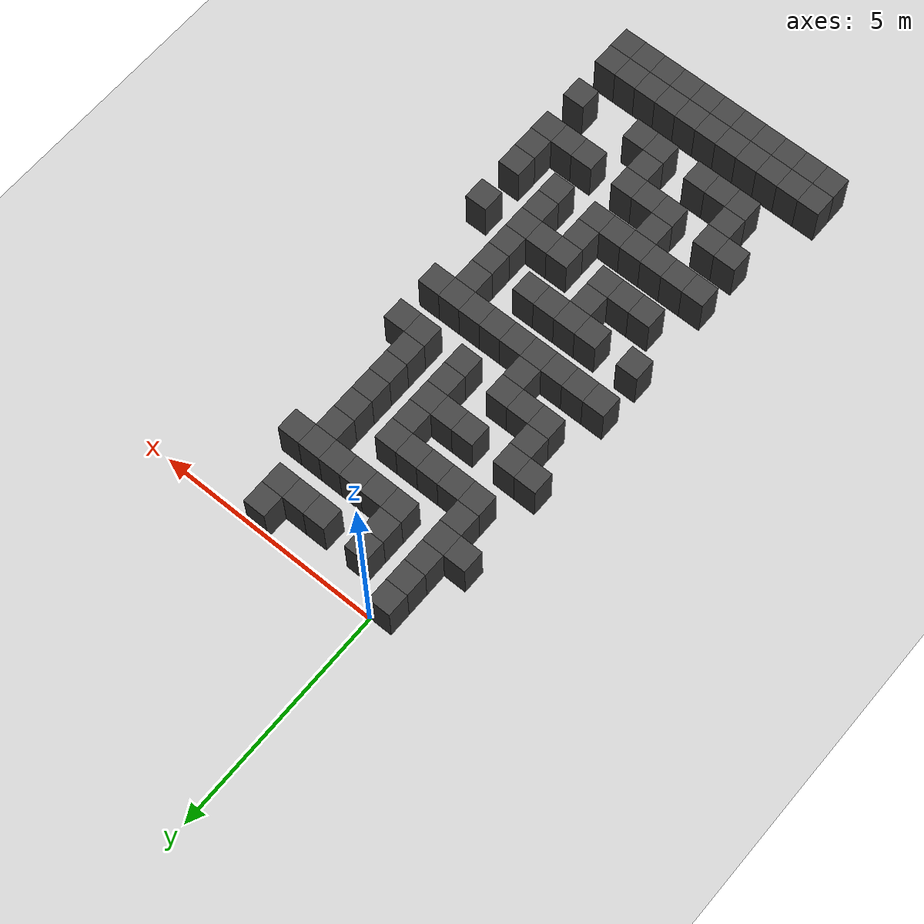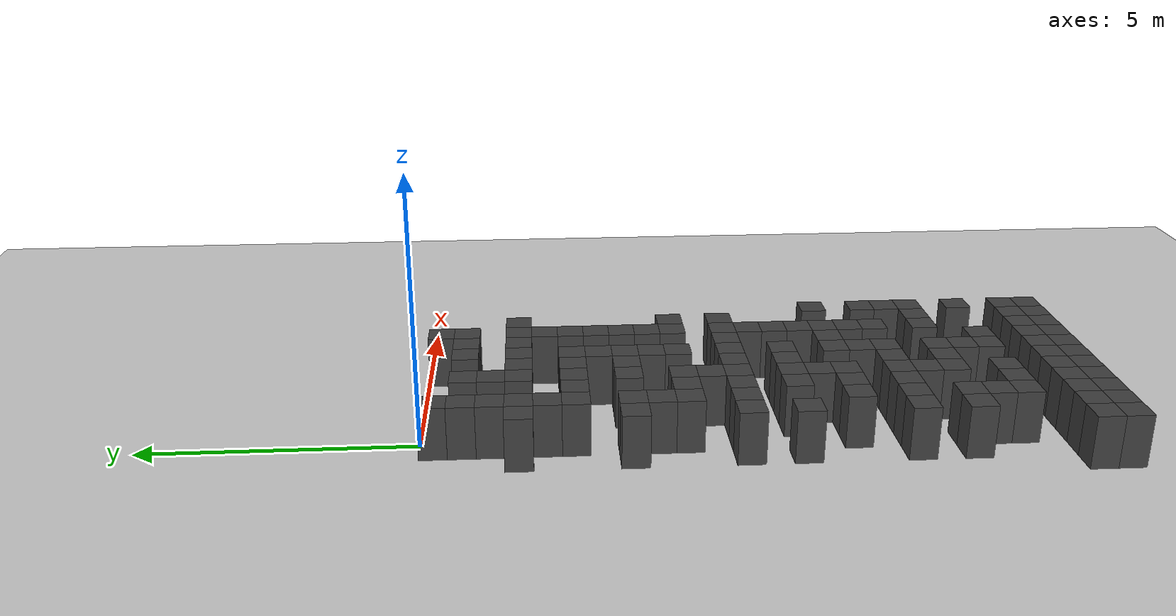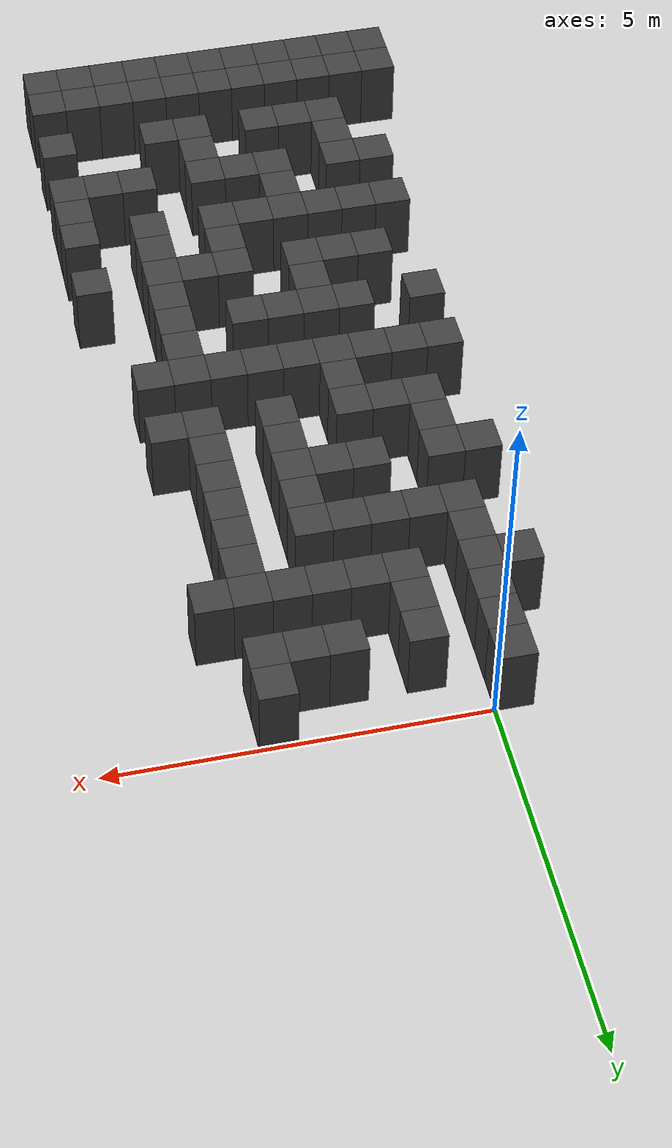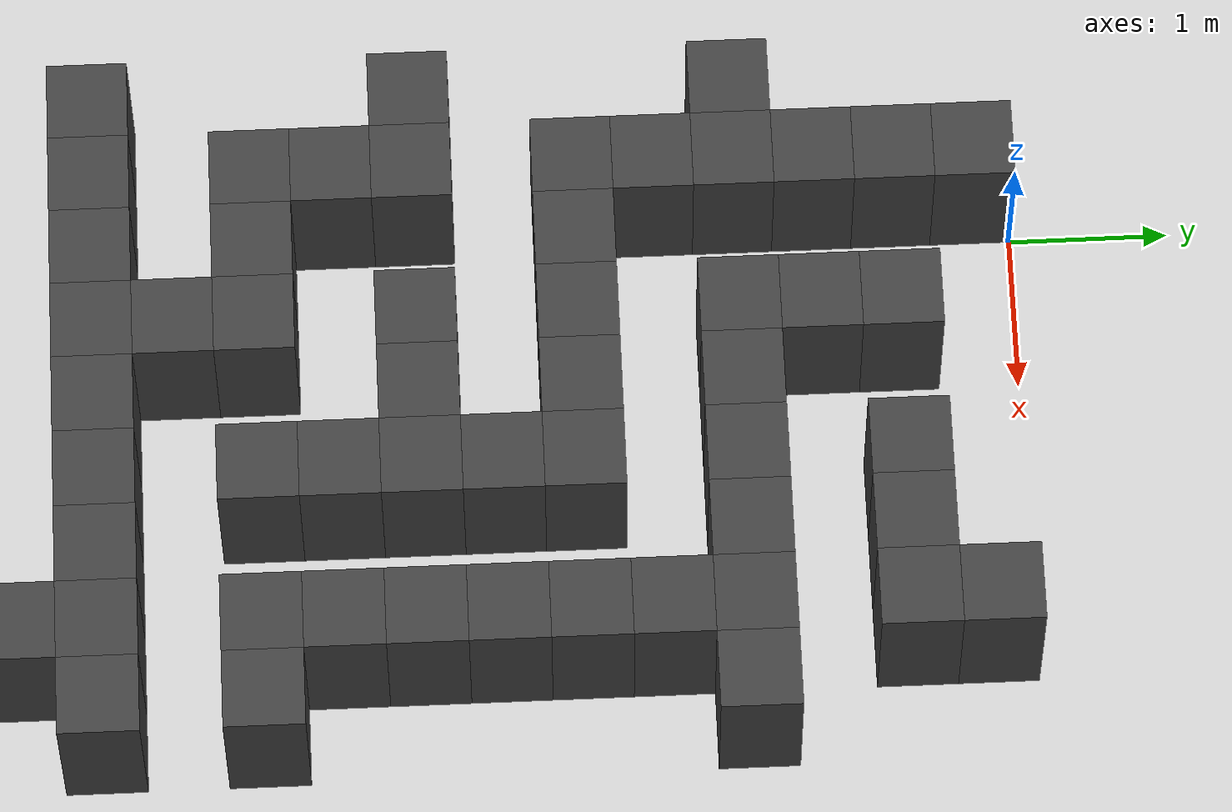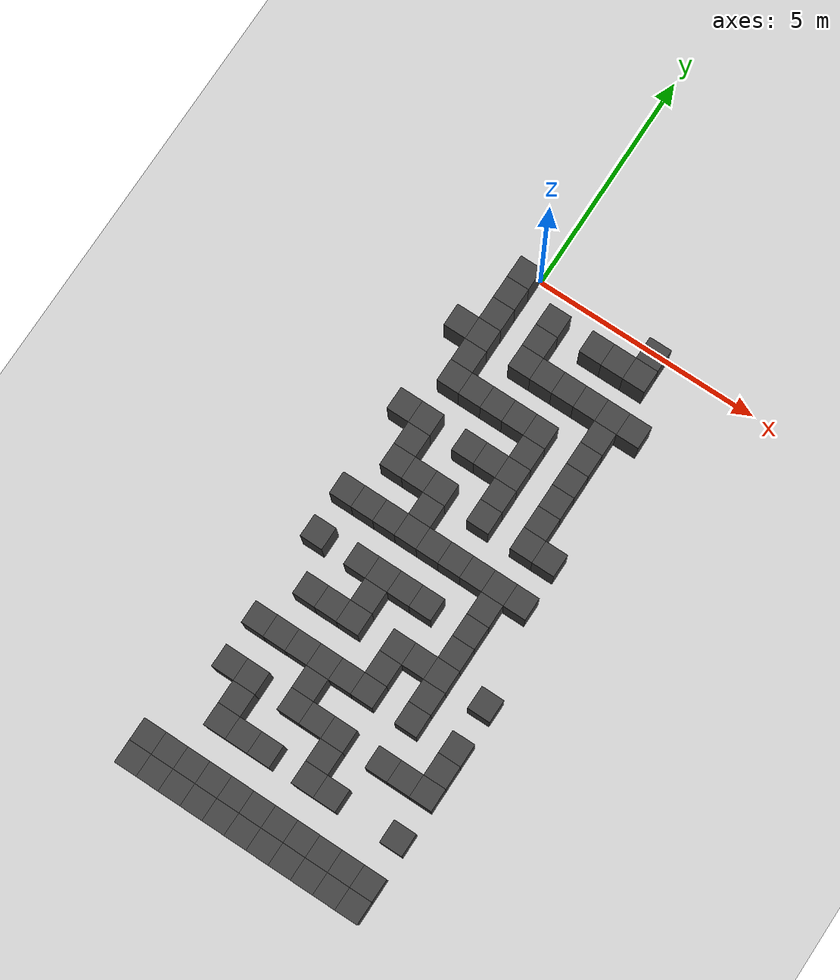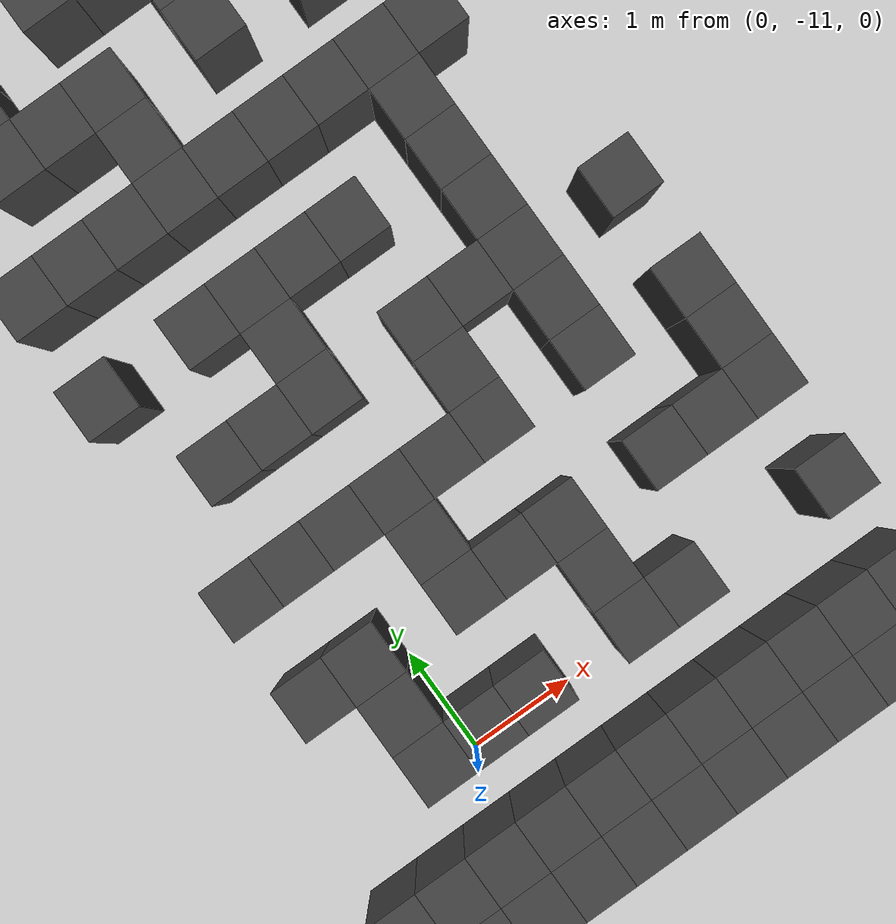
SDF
<sdf version="1.7">
 <world name="map_18332">
  <model name="ground_plane">
   <static>true</static>
   <link name="link">
    <collision name="collision">
     <geometry><plane><normal>0 0 1</normal><size>200 200</size></plane></geometry>
    </collision>
    <visual name="visual">
     <geometry><plane><normal>0 0 1</normal><size>200 200</size></plane></geometry>
     <material><ambient>0.8 0.8 0.8 1</ambient><diffuse>0.8 0.8 0.8 1</diffuse></material>
    </visual>
   </link>
  </model>
  <model name="maze_environment">
   <static>true</static>
   <link name="wall_649">
    <pose>-0.250 -0.250 0.500 0 0 0</pose>
    <collision name="col"><geometry><box><size>0.5 0.5 1.0</size></box></geometry></collision>
    <visual name="vis">
     <geometry><box><size>0.5 0.5 1.0</size></box></geometry>
     <material><ambient>0.15 0.15 0.15 1</ambient><diffuse>0.25 0.25 0.25 1</diffuse></material>
    </visual>
   </link>
   <link name="wall_650">
    <pose>2.750 -0.250 0.500 0 0 0</pose>
    <collision name="col"><geometry><box><size>0.5 0.5 1.0</size></box></geometry></collision>
    <visual name="vis">
     <geometry><box><size>0.5 0.5 1.0</size></box></geometry>
     <material><ambient>0.15 0.15 0.15 1</ambient><diffuse>0.25 0.25 0.25 1</diffuse></material>
    </visual>
   </link>
   <link name="wall_673">
    <pose>-0.250 -0.750 0.500 0 0 0</pose>
    <collision name="col"><geometry><box><size>0.5 0.5 1.0</size></box></geometry></collision>
    <visual name="vis">
     <geometry><box><size>0.5 0.5 1.0</size></box></geometry>
     <material><ambient>0.15 0.15 0.15 1</ambient><diffuse>0.25 0.25 0.25 1</diffuse></material>
    </visual>
   </link>
   <link name="wall_674">
    <pose>0.750 -0.750 0.500 0 0 0</pose>
    <collision name="col"><geometry><box><size>0.5 0.5 1.0</size></box></geometry></collision>
    <visual name="vis">
     <geometry><box><size>0.5 0.5 1.0</size></box></geometry>
     <material><ambient>0.15 0.15 0.15 1</ambient><diffuse>0.25 0.25 0.25 1</diffuse></material>
    </visual>
   </link>
   <link name="wall_675">
    <pose>1.750 -0.750 0.500 0 0 0</pose>
    <collision name="col"><geometry><box><size>0.5 0.5 1.0</size></box></geometry></collision>
    <visual name="vis">
     <geometry><box><size>0.5 0.5 1.0</size></box></geometry>
     <material><ambient>0.15 0.15 0.15 1</ambient><diffuse>0.25 0.25 0.25 1</diffuse></material>
    </visual>
   </link>
   <link name="wall_676">
    <pose>2.250 -0.750 0.500 0 0 0</pose>
    <collision name="col"><geometry><box><size>0.5 0.5 1.0</size></box></geometry></collision>
    <visual name="vis">
     <geometry><box><size>0.5 0.5 1.0</size></box></geometry>
     <material><ambient>0.15 0.15 0.15 1</ambient><diffuse>0.25 0.25 0.25 1</diffuse></material>
    </visual>
   </link>
   <link name="wall_677">
    <pose>2.750 -0.750 0.500 0 0 0</pose>
    <collision name="col"><geometry><box><size>0.5 0.5 1.0</size></box></geometry></collision>
    <visual name="vis">
     <geometry><box><size>0.5 0.5 1.0</size></box></geometry>
     <material><ambient>0.15 0.15 0.15 1</ambient><diffuse>0.25 0.25 0.25 1</diffuse></material>
    </visual>
   </link>
   <link name="wall_697">
    <pose>-0.250 -1.250 0.500 0 0 0</pose>
    <collision name="col"><geometry><box><size>0.5 0.5 1.0</size></box></geometry></collision>
    <visual name="vis">
     <geometry><box><size>0.5 0.5 1.0</size></box></geometry>
     <material><ambient>0.15 0.15 0.15 1</ambient><diffuse>0.25 0.25 0.25 1</diffuse></material>
    </visual>
   </link>
   <link name="wall_698">
    <pose>0.750 -1.250 0.500 0 0 0</pose>
    <collision name="col"><geometry><box><size>0.5 0.5 1.0</size></box></geometry></collision>
    <visual name="vis">
     <geometry><box><size>0.5 0.5 1.0</size></box></geometry>
     <material><ambient>0.15 0.15 0.15 1</ambient><diffuse>0.25 0.25 0.25 1</diffuse></material>
    </visual>
   </link>
   <link name="wall_725">
    <pose>-0.750 -1.750 0.500 0 0 0</pose>
    <collision name="col"><geometry><box><size>0.5 0.5 1.0</size></box></geometry></collision>
    <visual name="vis">
     <geometry><box><size>0.5 0.5 1.0</size></box></geometry>
     <material><ambient>0.15 0.15 0.15 1</ambient><diffuse>0.25 0.25 0.25 1</diffuse></material>
    </visual>
   </link>
   <link name="wall_726">
    <pose>-0.250 -1.750 0.500 0 0 0</pose>
    <collision name="col"><geometry><box><size>0.5 0.5 1.0</size></box></geometry></collision>
    <visual name="vis">
     <geometry><box><size>0.5 0.5 1.0</size></box></geometry>
     <material><ambient>0.15 0.15 0.15 1</ambient><diffuse>0.25 0.25 0.25 1</diffuse></material>
    </visual>
   </link>
   <link name="wall_727">
    <pose>0.750 -1.750 0.500 0 0 0</pose>
    <collision name="col"><geometry><box><size>0.5 0.5 1.0</size></box></geometry></collision>
    <visual name="vis">
     <geometry><box><size>0.5 0.5 1.0</size></box></geometry>
     <material><ambient>0.15 0.15 0.15 1</ambient><diffuse>0.25 0.25 0.25 1</diffuse></material>
    </visual>
   </link>
   <link name="wall_728">
    <pose>1.250 -1.750 0.500 0 0 0</pose>
    <collision name="col"><geometry><box><size>0.5 0.5 1.0</size></box></geometry></collision>
    <visual name="vis">
     <geometry><box><size>0.5 0.5 1.0</size></box></geometry>
     <material><ambient>0.15 0.15 0.15 1</ambient><diffuse>0.25 0.25 0.25 1</diffuse></material>
    </visual>
   </link>
   <link name="wall_729">
    <pose>1.750 -1.750 0.500 0 0 0</pose>
    <collision name="col"><geometry><box><size>0.5 0.5 1.0</size></box></geometry></collision>
    <visual name="vis">
     <geometry><box><size>0.5 0.5 1.0</size></box></geometry>
     <material><ambient>0.15 0.15 0.15 1</ambient><diffuse>0.25 0.25 0.25 1</diffuse></material>
    </visual>
   </link>
   <link name="wall_730">
    <pose>2.250 -1.750 0.500 0 0 0</pose>
    <collision name="col"><geometry><box><size>0.5 0.5 1.0</size></box></geometry></collision>
    <visual name="vis">
     <geometry><box><size>0.5 0.5 1.0</size></box></geometry>
     <material><ambient>0.15 0.15 0.15 1</ambient><diffuse>0.25 0.25 0.25 1</diffuse></material>
    </visual>
   </link>
   <link name="wall_731">
    <pose>2.750 -1.750 0.500 0 0 0</pose>
    <collision name="col"><geometry><box><size>0.5 0.5 1.0</size></box></geometry></collision>
    <visual name="vis">
     <geometry><box><size>0.5 0.5 1.0</size></box></geometry>
     <material><ambient>0.15 0.15 0.15 1</ambient><diffuse>0.25 0.25 0.25 1</diffuse></material>
    </visual>
   </link>
   <link name="wall_732">
    <pose>3.250 -1.750 0.500 0 0 0</pose>
    <collision name="col"><geometry><box><size>0.5 0.5 1.0</size></box></geometry></collision>
    <visual name="vis">
     <geometry><box><size>0.5 0.5 1.0</size></box></geometry>
     <material><ambient>0.15 0.15 0.15 1</ambient><diffuse>0.25 0.25 0.25 1</diffuse></material>
    </visual>
   </link>
   <link name="wall_749">
    <pose>-0.250 -2.250 0.500 0 0 0</pose>
    <collision name="col"><geometry><box><size>0.5 0.5 1.0</size></box></geometry></collision>
    <visual name="vis">
     <geometry><box><size>0.5 0.5 1.0</size></box></geometry>
     <material><ambient>0.15 0.15 0.15 1</ambient><diffuse>0.25 0.25 0.25 1</diffuse></material>
    </visual>
   </link>
   <link name="wall_750">
    <pose>2.750 -2.250 0.500 0 0 0</pose>
    <collision name="col"><geometry><box><size>0.5 0.5 1.0</size></box></geometry></collision>
    <visual name="vis">
     <geometry><box><size>0.5 0.5 1.0</size></box></geometry>
     <material><ambient>0.15 0.15 0.15 1</ambient><diffuse>0.25 0.25 0.25 1</diffuse></material>
    </visual>
   </link>
   <link name="wall_772">
    <pose>-0.250 -2.750 0.500 0 0 0</pose>
    <collision name="col"><geometry><box><size>0.5 0.5 1.0</size></box></geometry></collision>
    <visual name="vis">
     <geometry><box><size>0.5 0.5 1.0</size></box></geometry>
     <material><ambient>0.15 0.15 0.15 1</ambient><diffuse>0.25 0.25 0.25 1</diffuse></material>
    </visual>
   </link>
   <link name="wall_773">
    <pose>0.250 -2.750 0.500 0 0 0</pose>
    <collision name="col"><geometry><box><size>0.5 0.5 1.0</size></box></geometry></collision>
    <visual name="vis">
     <geometry><box><size>0.5 0.5 1.0</size></box></geometry>
     <material><ambient>0.15 0.15 0.15 1</ambient><diffuse>0.25 0.25 0.25 1</diffuse></material>
    </visual>
   </link>
   <link name="wall_774">
    <pose>0.750 -2.750 0.500 0 0 0</pose>
    <collision name="col"><geometry><box><size>0.5 0.5 1.0</size></box></geometry></collision>
    <visual name="vis">
     <geometry><box><size>0.5 0.5 1.0</size></box></geometry>
     <material><ambient>0.15 0.15 0.15 1</ambient><diffuse>0.25 0.25 0.25 1</diffuse></material>
    </visual>
   </link>
   <link name="wall_775">
    <pose>1.250 -2.750 0.500 0 0 0</pose>
    <collision name="col"><geometry><box><size>0.5 0.5 1.0</size></box></geometry></collision>
    <visual name="vis">
     <geometry><box><size>0.5 0.5 1.0</size></box></geometry>
     <material><ambient>0.15 0.15 0.15 1</ambient><diffuse>0.25 0.25 0.25 1</diffuse></material>
    </visual>
   </link>
   <link name="wall_776">
    <pose>1.750 -2.750 0.500 0 0 0</pose>
    <collision name="col"><geometry><box><size>0.5 0.5 1.0</size></box></geometry></collision>
    <visual name="vis">
     <geometry><box><size>0.5 0.5 1.0</size></box></geometry>
     <material><ambient>0.15 0.15 0.15 1</ambient><diffuse>0.25 0.25 0.25 1</diffuse></material>
    </visual>
   </link>
   <link name="wall_777">
    <pose>2.750 -2.750 0.500 0 0 0</pose>
    <collision name="col"><geometry><box><size>0.5 0.5 1.0</size></box></geometry></collision>
    <visual name="vis">
     <geometry><box><size>0.5 0.5 1.0</size></box></geometry>
     <material><ambient>0.15 0.15 0.15 1</ambient><diffuse>0.25 0.25 0.25 1</diffuse></material>
    </visual>
   </link>
   <link name="wall_800">
    <pose>1.750 -3.250 0.500 0 0 0</pose>
    <collision name="col"><geometry><box><size>0.5 0.5 1.0</size></box></geometry></collision>
    <visual name="vis">
     <geometry><box><size>0.5 0.5 1.0</size></box></geometry>
     <material><ambient>0.15 0.15 0.15 1</ambient><diffuse>0.25 0.25 0.25 1</diffuse></material>
    </visual>
   </link>
   <link name="wall_801">
    <pose>2.750 -3.250 0.500 0 0 0</pose>
    <collision name="col"><geometry><box><size>0.5 0.5 1.0</size></box></geometry></collision>
    <visual name="vis">
     <geometry><box><size>0.5 0.5 1.0</size></box></geometry>
     <material><ambient>0.15 0.15 0.15 1</ambient><diffuse>0.25 0.25 0.25 1</diffuse></material>
    </visual>
   </link>
   <link name="wall_822">
    <pose>-0.750 -3.750 0.500 0 0 0</pose>
    <collision name="col"><geometry><box><size>0.5 0.5 1.0</size></box></geometry></collision>
    <visual name="vis">
     <geometry><box><size>0.5 0.5 1.0</size></box></geometry>
     <material><ambient>0.15 0.15 0.15 1</ambient><diffuse>0.25 0.25 0.25 1</diffuse></material>
    </visual>
   </link>
   <link name="wall_823">
    <pose>-0.250 -3.750 0.500 0 0 0</pose>
    <collision name="col"><geometry><box><size>0.5 0.5 1.0</size></box></geometry></collision>
    <visual name="vis">
     <geometry><box><size>0.5 0.5 1.0</size></box></geometry>
     <material><ambient>0.15 0.15 0.15 1</ambient><diffuse>0.25 0.25 0.25 1</diffuse></material>
    </visual>
   </link>
   <link name="wall_824">
    <pose>0.750 -3.750 0.500 0 0 0</pose>
    <collision name="col"><geometry><box><size>0.5 0.5 1.0</size></box></geometry></collision>
    <visual name="vis">
     <geometry><box><size>0.5 0.5 1.0</size></box></geometry>
     <material><ambient>0.15 0.15 0.15 1</ambient><diffuse>0.25 0.25 0.25 1</diffuse></material>
    </visual>
   </link>
   <link name="wall_825">
    <pose>1.250 -3.750 0.500 0 0 0</pose>
    <collision name="col"><geometry><box><size>0.5 0.5 1.0</size></box></geometry></collision>
    <visual name="vis">
     <geometry><box><size>0.5 0.5 1.0</size></box></geometry>
     <material><ambient>0.15 0.15 0.15 1</ambient><diffuse>0.25 0.25 0.25 1</diffuse></material>
    </visual>
   </link>
   <link name="wall_826">
    <pose>1.750 -3.750 0.500 0 0 0</pose>
    <collision name="col"><geometry><box><size>0.5 0.5 1.0</size></box></geometry></collision>
    <visual name="vis">
     <geometry><box><size>0.5 0.5 1.0</size></box></geometry>
     <material><ambient>0.15 0.15 0.15 1</ambient><diffuse>0.25 0.25 0.25 1</diffuse></material>
    </visual>
   </link>
   <link name="wall_827">
    <pose>2.750 -3.750 0.500 0 0 0</pose>
    <collision name="col"><geometry><box><size>0.5 0.5 1.0</size></box></geometry></collision>
    <visual name="vis">
     <geometry><box><size>0.5 0.5 1.0</size></box></geometry>
     <material><ambient>0.15 0.15 0.15 1</ambient><diffuse>0.25 0.25 0.25 1</diffuse></material>
    </visual>
   </link>
   <link name="wall_847">
    <pose>-0.250 -4.250 0.500 0 0 0</pose>
    <collision name="col"><geometry><box><size>0.5 0.5 1.0</size></box></geometry></collision>
    <visual name="vis">
     <geometry><box><size>0.5 0.5 1.0</size></box></geometry>
     <material><ambient>0.15 0.15 0.15 1</ambient><diffuse>0.25 0.25 0.25 1</diffuse></material>
    </visual>
   </link>
   <link name="wall_848">
    <pose>1.750 -4.250 0.500 0 0 0</pose>
    <collision name="col"><geometry><box><size>0.5 0.5 1.0</size></box></geometry></collision>
    <visual name="vis">
     <geometry><box><size>0.5 0.5 1.0</size></box></geometry>
     <material><ambient>0.15 0.15 0.15 1</ambient><diffuse>0.25 0.25 0.25 1</diffuse></material>
    </visual>
   </link>
   <link name="wall_849">
    <pose>2.750 -4.250 0.500 0 0 0</pose>
    <collision name="col"><geometry><box><size>0.5 0.5 1.0</size></box></geometry></collision>
    <visual name="vis">
     <geometry><box><size>0.5 0.5 1.0</size></box></geometry>
     <material><ambient>0.15 0.15 0.15 1</ambient><diffuse>0.25 0.25 0.25 1</diffuse></material>
    </visual>
   </link>
   <link name="wall_871">
    <pose>-0.250 -4.750 0.500 0 0 0</pose>
    <collision name="col"><geometry><box><size>0.5 0.5 1.0</size></box></geometry></collision>
    <visual name="vis">
     <geometry><box><size>0.5 0.5 1.0</size></box></geometry>
     <material><ambient>0.15 0.15 0.15 1</ambient><diffuse>0.25 0.25 0.25 1</diffuse></material>
    </visual>
   </link>
   <link name="wall_872">
    <pose>0.250 -4.750 0.500 0 0 0</pose>
    <collision name="col"><geometry><box><size>0.5 0.5 1.0</size></box></geometry></collision>
    <visual name="vis">
     <geometry><box><size>0.5 0.5 1.0</size></box></geometry>
     <material><ambient>0.15 0.15 0.15 1</ambient><diffuse>0.25 0.25 0.25 1</diffuse></material>
    </visual>
   </link>
   <link name="wall_873">
    <pose>0.750 -4.750 0.500 0 0 0</pose>
    <collision name="col"><geometry><box><size>0.5 0.5 1.0</size></box></geometry></collision>
    <visual name="vis">
     <geometry><box><size>0.5 0.5 1.0</size></box></geometry>
     <material><ambient>0.15 0.15 0.15 1</ambient><diffuse>0.25 0.25 0.25 1</diffuse></material>
    </visual>
   </link>
   <link name="wall_874">
    <pose>1.750 -4.750 0.500 0 0 0</pose>
    <collision name="col"><geometry><box><size>0.5 0.5 1.0</size></box></geometry></collision>
    <visual name="vis">
     <geometry><box><size>0.5 0.5 1.0</size></box></geometry>
     <material><ambient>0.15 0.15 0.15 1</ambient><diffuse>0.25 0.25 0.25 1</diffuse></material>
    </visual>
   </link>
   <link name="wall_875">
    <pose>2.750 -4.750 0.500 0 0 0</pose>
    <collision name="col"><geometry><box><size>0.5 0.5 1.0</size></box></geometry></collision>
    <visual name="vis">
     <geometry><box><size>0.5 0.5 1.0</size></box></geometry>
     <material><ambient>0.15 0.15 0.15 1</ambient><diffuse>0.25 0.25 0.25 1</diffuse></material>
    </visual>
   </link>
   <link name="wall_876">
    <pose>3.250 -4.750 0.500 0 0 0</pose>
    <collision name="col"><geometry><box><size>0.5 0.5 1.0</size></box></geometry></collision>
    <visual name="vis">
     <geometry><box><size>0.5 0.5 1.0</size></box></geometry>
     <material><ambient>0.15 0.15 0.15 1</ambient><diffuse>0.25 0.25 0.25 1</diffuse></material>
    </visual>
   </link>
   <link name="wall_899">
    <pose>0.750 -5.250 0.500 0 0 0</pose>
    <collision name="col"><geometry><box><size>0.5 0.5 1.0</size></box></geometry></collision>
    <visual name="vis">
     <geometry><box><size>0.5 0.5 1.0</size></box></geometry>
     <material><ambient>0.15 0.15 0.15 1</ambient><diffuse>0.25 0.25 0.25 1</diffuse></material>
    </visual>
   </link>
   <link name="wall_918">
    <pose>-0.750 -5.750 0.500 0 0 0</pose>
    <collision name="col"><geometry><box><size>0.5 0.5 1.0</size></box></geometry></collision>
    <visual name="vis">
     <geometry><box><size>0.5 0.5 1.0</size></box></geometry>
     <material><ambient>0.15 0.15 0.15 1</ambient><diffuse>0.25 0.25 0.25 1</diffuse></material>
    </visual>
   </link>
   <link name="wall_919">
    <pose>-0.250 -5.750 0.500 0 0 0</pose>
    <collision name="col"><geometry><box><size>0.5 0.5 1.0</size></box></geometry></collision>
    <visual name="vis">
     <geometry><box><size>0.5 0.5 1.0</size></box></geometry>
     <material><ambient>0.15 0.15 0.15 1</ambient><diffuse>0.25 0.25 0.25 1</diffuse></material>
    </visual>
   </link>
   <link name="wall_920">
    <pose>0.250 -5.750 0.500 0 0 0</pose>
    <collision name="col"><geometry><box><size>0.5 0.5 1.0</size></box></geometry></collision>
    <visual name="vis">
     <geometry><box><size>0.5 0.5 1.0</size></box></geometry>
     <material><ambient>0.15 0.15 0.15 1</ambient><diffuse>0.25 0.25 0.25 1</diffuse></material>
    </visual>
   </link>
   <link name="wall_921">
    <pose>0.750 -5.750 0.500 0 0 0</pose>
    <collision name="col"><geometry><box><size>0.5 0.5 1.0</size></box></geometry></collision>
    <visual name="vis">
     <geometry><box><size>0.5 0.5 1.0</size></box></geometry>
     <material><ambient>0.15 0.15 0.15 1</ambient><diffuse>0.25 0.25 0.25 1</diffuse></material>
    </visual>
   </link>
   <link name="wall_922">
    <pose>1.250 -5.750 0.500 0 0 0</pose>
    <collision name="col"><geometry><box><size>0.5 0.5 1.0</size></box></geometry></collision>
    <visual name="vis">
     <geometry><box><size>0.5 0.5 1.0</size></box></geometry>
     <material><ambient>0.15 0.15 0.15 1</ambient><diffuse>0.25 0.25 0.25 1</diffuse></material>
    </visual>
   </link>
   <link name="wall_923">
    <pose>1.750 -5.750 0.500 0 0 0</pose>
    <collision name="col"><geometry><box><size>0.5 0.5 1.0</size></box></geometry></collision>
    <visual name="vis">
     <geometry><box><size>0.5 0.5 1.0</size></box></geometry>
     <material><ambient>0.15 0.15 0.15 1</ambient><diffuse>0.25 0.25 0.25 1</diffuse></material>
    </visual>
   </link>
   <link name="wall_924">
    <pose>2.250 -5.750 0.500 0 0 0</pose>
    <collision name="col"><geometry><box><size>0.5 0.5 1.0</size></box></geometry></collision>
    <visual name="vis">
     <geometry><box><size>0.5 0.5 1.0</size></box></geometry>
     <material><ambient>0.15 0.15 0.15 1</ambient><diffuse>0.25 0.25 0.25 1</diffuse></material>
    </visual>
   </link>
   <link name="wall_925">
    <pose>2.750 -5.750 0.500 0 0 0</pose>
    <collision name="col"><geometry><box><size>0.5 0.5 1.0</size></box></geometry></collision>
    <visual name="vis">
     <geometry><box><size>0.5 0.5 1.0</size></box></geometry>
     <material><ambient>0.15 0.15 0.15 1</ambient><diffuse>0.25 0.25 0.25 1</diffuse></material>
    </visual>
   </link>
   <link name="wall_926">
    <pose>3.250 -5.750 0.500 0 0 0</pose>
    <collision name="col"><geometry><box><size>0.5 0.5 1.0</size></box></geometry></collision>
    <visual name="vis">
     <geometry><box><size>0.5 0.5 1.0</size></box></geometry>
     <material><ambient>0.15 0.15 0.15 1</ambient><diffuse>0.25 0.25 0.25 1</diffuse></material>
    </visual>
   </link>
   <link name="wall_949">
    <pose>2.750 -6.250 0.500 0 0 0</pose>
    <collision name="col"><geometry><box><size>0.5 0.5 1.0</size></box></geometry></collision>
    <visual name="vis">
     <geometry><box><size>0.5 0.5 1.0</size></box></geometry>
     <material><ambient>0.15 0.15 0.15 1</ambient><diffuse>0.25 0.25 0.25 1</diffuse></material>
    </visual>
   </link>
   <link name="wall_971">
    <pose>-0.750 -6.750 0.500 0 0 0</pose>
    <collision name="col"><geometry><box><size>0.5 0.5 1.0</size></box></geometry></collision>
    <visual name="vis">
     <geometry><box><size>0.5 0.5 1.0</size></box></geometry>
     <material><ambient>0.15 0.15 0.15 1</ambient><diffuse>0.25 0.25 0.25 1</diffuse></material>
    </visual>
   </link>
   <link name="wall_972">
    <pose>0.250 -6.750 0.500 0 0 0</pose>
    <collision name="col"><geometry><box><size>0.5 0.5 1.0</size></box></geometry></collision>
    <visual name="vis">
     <geometry><box><size>0.5 0.5 1.0</size></box></geometry>
     <material><ambient>0.15 0.15 0.15 1</ambient><diffuse>0.25 0.25 0.25 1</diffuse></material>
    </visual>
   </link>
   <link name="wall_973">
    <pose>0.750 -6.750 0.500 0 0 0</pose>
    <collision name="col"><geometry><box><size>0.5 0.5 1.0</size></box></geometry></collision>
    <visual name="vis">
     <geometry><box><size>0.5 0.5 1.0</size></box></geometry>
     <material><ambient>0.15 0.15 0.15 1</ambient><diffuse>0.25 0.25 0.25 1</diffuse></material>
    </visual>
   </link>
   <link name="wall_974">
    <pose>1.250 -6.750 0.500 0 0 0</pose>
    <collision name="col"><geometry><box><size>0.5 0.5 1.0</size></box></geometry></collision>
    <visual name="vis">
     <geometry><box><size>0.5 0.5 1.0</size></box></geometry>
     <material><ambient>0.15 0.15 0.15 1</ambient><diffuse>0.25 0.25 0.25 1</diffuse></material>
    </visual>
   </link>
   <link name="wall_975">
    <pose>1.750 -6.750 0.500 0 0 0</pose>
    <collision name="col"><geometry><box><size>0.5 0.5 1.0</size></box></geometry></collision>
    <visual name="vis">
     <geometry><box><size>0.5 0.5 1.0</size></box></geometry>
     <material><ambient>0.15 0.15 0.15 1</ambient><diffuse>0.25 0.25 0.25 1</diffuse></material>
    </visual>
   </link>
   <link name="wall_976">
    <pose>2.750 -6.750 0.500 0 0 0</pose>
    <collision name="col"><geometry><box><size>0.5 0.5 1.0</size></box></geometry></collision>
    <visual name="vis">
     <geometry><box><size>0.5 0.5 1.0</size></box></geometry>
     <material><ambient>0.15 0.15 0.15 1</ambient><diffuse>0.25 0.25 0.25 1</diffuse></material>
    </visual>
   </link>
   <link name="wall_996">
    <pose>0.750 -7.250 0.500 0 0 0</pose>
    <collision name="col"><geometry><box><size>0.5 0.5 1.0</size></box></geometry></collision>
    <visual name="vis">
     <geometry><box><size>0.5 0.5 1.0</size></box></geometry>
     <material><ambient>0.15 0.15 0.15 1</ambient><diffuse>0.25 0.25 0.25 1</diffuse></material>
    </visual>
   </link>
   <link name="wall_997">
    <pose>2.750 -7.250 0.500 0 0 0</pose>
    <collision name="col"><geometry><box><size>0.5 0.5 1.0</size></box></geometry></collision>
    <visual name="vis">
     <geometry><box><size>0.5 0.5 1.0</size></box></geometry>
     <material><ambient>0.15 0.15 0.15 1</ambient><diffuse>0.25 0.25 0.25 1</diffuse></material>
    </visual>
   </link>
   <link name="wall_1022">
    <pose>-0.250 -7.750 0.500 0 0 0</pose>
    <collision name="col"><geometry><box><size>0.5 0.5 1.0</size></box></geometry></collision>
    <visual name="vis">
     <geometry><box><size>0.5 0.5 1.0</size></box></geometry>
     <material><ambient>0.15 0.15 0.15 1</ambient><diffuse>0.25 0.25 0.25 1</diffuse></material>
    </visual>
   </link>
   <link name="wall_1023">
    <pose>0.250 -7.750 0.500 0 0 0</pose>
    <collision name="col"><geometry><box><size>0.5 0.5 1.0</size></box></geometry></collision>
    <visual name="vis">
     <geometry><box><size>0.5 0.5 1.0</size></box></geometry>
     <material><ambient>0.15 0.15 0.15 1</ambient><diffuse>0.25 0.25 0.25 1</diffuse></material>
    </visual>
   </link>
   <link name="wall_1024">
    <pose>0.750 -7.750 0.500 0 0 0</pose>
    <collision name="col"><geometry><box><size>0.5 0.5 1.0</size></box></geometry></collision>
    <visual name="vis">
     <geometry><box><size>0.5 0.5 1.0</size></box></geometry>
     <material><ambient>0.15 0.15 0.15 1</ambient><diffuse>0.25 0.25 0.25 1</diffuse></material>
    </visual>
   </link>
   <link name="wall_1025">
    <pose>1.750 -7.750 0.500 0 0 0</pose>
    <collision name="col"><geometry><box><size>0.5 0.5 1.0</size></box></geometry></collision>
    <visual name="vis">
     <geometry><box><size>0.5 0.5 1.0</size></box></geometry>
     <material><ambient>0.15 0.15 0.15 1</ambient><diffuse>0.25 0.25 0.25 1</diffuse></material>
    </visual>
   </link>
   <link name="wall_1026">
    <pose>2.250 -7.750 0.500 0 0 0</pose>
    <collision name="col"><geometry><box><size>0.5 0.5 1.0</size></box></geometry></collision>
    <visual name="vis">
     <geometry><box><size>0.5 0.5 1.0</size></box></geometry>
     <material><ambient>0.15 0.15 0.15 1</ambient><diffuse>0.25 0.25 0.25 1</diffuse></material>
    </visual>
   </link>
   <link name="wall_1027">
    <pose>2.750 -7.750 0.500 0 0 0</pose>
    <collision name="col"><geometry><box><size>0.5 0.5 1.0</size></box></geometry></collision>
    <visual name="vis">
     <geometry><box><size>0.5 0.5 1.0</size></box></geometry>
     <material><ambient>0.15 0.15 0.15 1</ambient><diffuse>0.25 0.25 0.25 1</diffuse></material>
    </visual>
   </link>
   <link name="wall_1028">
    <pose>3.750 -7.750 0.500 0 0 0</pose>
    <collision name="col"><geometry><box><size>0.5 0.5 1.0</size></box></geometry></collision>
    <visual name="vis">
     <geometry><box><size>0.5 0.5 1.0</size></box></geometry>
     <material><ambient>0.15 0.15 0.15 1</ambient><diffuse>0.25 0.25 0.25 1</diffuse></material>
    </visual>
   </link>
   <link name="wall_1044">
    <pose>1.750 -8.250 0.500 0 0 0</pose>
    <collision name="col"><geometry><box><size>0.5 0.5 1.0</size></box></geometry></collision>
    <visual name="vis">
     <geometry><box><size>0.5 0.5 1.0</size></box></geometry>
     <material><ambient>0.15 0.15 0.15 1</ambient><diffuse>0.25 0.25 0.25 1</diffuse></material>
    </visual>
   </link>
   <link name="wall_1045">
    <pose>2.750 -8.250 0.500 0 0 0</pose>
    <collision name="col"><geometry><box><size>0.5 0.5 1.0</size></box></geometry></collision>
    <visual name="vis">
     <geometry><box><size>0.5 0.5 1.0</size></box></geometry>
     <material><ambient>0.15 0.15 0.15 1</ambient><diffuse>0.25 0.25 0.25 1</diffuse></material>
    </visual>
   </link>
   <link name="wall_1070">
    <pose>-0.750 -8.750 0.500 0 0 0</pose>
    <collision name="col"><geometry><box><size>0.5 0.5 1.0</size></box></geometry></collision>
    <visual name="vis">
     <geometry><box><size>0.5 0.5 1.0</size></box></geometry>
     <material><ambient>0.15 0.15 0.15 1</ambient><diffuse>0.25 0.25 0.25 1</diffuse></material>
    </visual>
   </link>
   <link name="wall_1071">
    <pose>-0.250 -8.750 0.500 0 0 0</pose>
    <collision name="col"><geometry><box><size>0.5 0.5 1.0</size></box></geometry></collision>
    <visual name="vis">
     <geometry><box><size>0.5 0.5 1.0</size></box></geometry>
     <material><ambient>0.15 0.15 0.15 1</ambient><diffuse>0.25 0.25 0.25 1</diffuse></material>
    </visual>
   </link>
   <link name="wall_1072">
    <pose>0.250 -8.750 0.500 0 0 0</pose>
    <collision name="col"><geometry><box><size>0.5 0.5 1.0</size></box></geometry></collision>
    <visual name="vis">
     <geometry><box><size>0.5 0.5 1.0</size></box></geometry>
     <material><ambient>0.15 0.15 0.15 1</ambient><diffuse>0.25 0.25 0.25 1</diffuse></material>
    </visual>
   </link>
   <link name="wall_1073">
    <pose>0.750 -8.750 0.500 0 0 0</pose>
    <collision name="col"><geometry><box><size>0.5 0.5 1.0</size></box></geometry></collision>
    <visual name="vis">
     <geometry><box><size>0.5 0.5 1.0</size></box></geometry>
     <material><ambient>0.15 0.15 0.15 1</ambient><diffuse>0.25 0.25 0.25 1</diffuse></material>
    </visual>
   </link>
   <link name="wall_1074">
    <pose>1.250 -8.750 0.500 0 0 0</pose>
    <collision name="col"><geometry><box><size>0.5 0.5 1.0</size></box></geometry></collision>
    <visual name="vis">
     <geometry><box><size>0.5 0.5 1.0</size></box></geometry>
     <material><ambient>0.15 0.15 0.15 1</ambient><diffuse>0.25 0.25 0.25 1</diffuse></material>
    </visual>
   </link>
   <link name="wall_1075">
    <pose>1.750 -8.750 0.500 0 0 0</pose>
    <collision name="col"><geometry><box><size>0.5 0.5 1.0</size></box></geometry></collision>
    <visual name="vis">
     <geometry><box><size>0.5 0.5 1.0</size></box></geometry>
     <material><ambient>0.15 0.15 0.15 1</ambient><diffuse>0.25 0.25 0.25 1</diffuse></material>
    </visual>
   </link>
   <link name="wall_1076">
    <pose>2.750 -8.750 0.500 0 0 0</pose>
    <collision name="col"><geometry><box><size>0.5 0.5 1.0</size></box></geometry></collision>
    <visual name="vis">
     <geometry><box><size>0.5 0.5 1.0</size></box></geometry>
     <material><ambient>0.15 0.15 0.15 1</ambient><diffuse>0.25 0.25 0.25 1</diffuse></material>
    </visual>
   </link>
   <link name="wall_1077">
    <pose>3.750 -8.750 0.500 0 0 0</pose>
    <collision name="col"><geometry><box><size>0.5 0.5 1.0</size></box></geometry></collision>
    <visual name="vis">
     <geometry><box><size>0.5 0.5 1.0</size></box></geometry>
     <material><ambient>0.15 0.15 0.15 1</ambient><diffuse>0.25 0.25 0.25 1</diffuse></material>
    </visual>
   </link>
   <link name="wall_1096">
    <pose>0.750 -9.250 0.500 0 0 0</pose>
    <collision name="col"><geometry><box><size>0.5 0.5 1.0</size></box></geometry></collision>
    <visual name="vis">
     <geometry><box><size>0.5 0.5 1.0</size></box></geometry>
     <material><ambient>0.15 0.15 0.15 1</ambient><diffuse>0.25 0.25 0.25 1</diffuse></material>
    </visual>
   </link>
   <link name="wall_1097">
    <pose>3.750 -9.250 0.500 0 0 0</pose>
    <collision name="col"><geometry><box><size>0.5 0.5 1.0</size></box></geometry></collision>
    <visual name="vis">
     <geometry><box><size>0.5 0.5 1.0</size></box></geometry>
     <material><ambient>0.15 0.15 0.15 1</ambient><diffuse>0.25 0.25 0.25 1</diffuse></material>
    </visual>
   </link>
   <link name="wall_1123">
    <pose>-0.750 -9.750 0.500 0 0 0</pose>
    <collision name="col"><geometry><box><size>0.5 0.5 1.0</size></box></geometry></collision>
    <visual name="vis">
     <geometry><box><size>0.5 0.5 1.0</size></box></geometry>
     <material><ambient>0.15 0.15 0.15 1</ambient><diffuse>0.25 0.25 0.25 1</diffuse></material>
    </visual>
   </link>
   <link name="wall_1124">
    <pose>-0.250 -9.750 0.500 0 0 0</pose>
    <collision name="col"><geometry><box><size>0.5 0.5 1.0</size></box></geometry></collision>
    <visual name="vis">
     <geometry><box><size>0.5 0.5 1.0</size></box></geometry>
     <material><ambient>0.15 0.15 0.15 1</ambient><diffuse>0.25 0.25 0.25 1</diffuse></material>
    </visual>
   </link>
   <link name="wall_1125">
    <pose>0.750 -9.750 0.500 0 0 0</pose>
    <collision name="col"><geometry><box><size>0.5 0.5 1.0</size></box></geometry></collision>
    <visual name="vis">
     <geometry><box><size>0.5 0.5 1.0</size></box></geometry>
     <material><ambient>0.15 0.15 0.15 1</ambient><diffuse>0.25 0.25 0.25 1</diffuse></material>
    </visual>
   </link>
   <link name="wall_1126">
    <pose>1.250 -9.750 0.500 0 0 0</pose>
    <collision name="col"><geometry><box><size>0.5 0.5 1.0</size></box></geometry></collision>
    <visual name="vis">
     <geometry><box><size>0.5 0.5 1.0</size></box></geometry>
     <material><ambient>0.15 0.15 0.15 1</ambient><diffuse>0.25 0.25 0.25 1</diffuse></material>
    </visual>
   </link>
   <link name="wall_1127">
    <pose>1.750 -9.750 0.500 0 0 0</pose>
    <collision name="col"><geometry><box><size>0.5 0.5 1.0</size></box></geometry></collision>
    <visual name="vis">
     <geometry><box><size>0.5 0.5 1.0</size></box></geometry>
     <material><ambient>0.15 0.15 0.15 1</ambient><diffuse>0.25 0.25 0.25 1</diffuse></material>
    </visual>
   </link>
   <link name="wall_1128">
    <pose>2.750 -9.750 0.500 0 0 0</pose>
    <collision name="col"><geometry><box><size>0.5 0.5 1.0</size></box></geometry></collision>
    <visual name="vis">
     <geometry><box><size>0.5 0.5 1.0</size></box></geometry>
     <material><ambient>0.15 0.15 0.15 1</ambient><diffuse>0.25 0.25 0.25 1</diffuse></material>
    </visual>
   </link>
   <link name="wall_1129">
    <pose>3.250 -9.750 0.500 0 0 0</pose>
    <collision name="col"><geometry><box><size>0.5 0.5 1.0</size></box></geometry></collision>
    <visual name="vis">
     <geometry><box><size>0.5 0.5 1.0</size></box></geometry>
     <material><ambient>0.15 0.15 0.15 1</ambient><diffuse>0.25 0.25 0.25 1</diffuse></material>
    </visual>
   </link>
   <link name="wall_1130">
    <pose>3.750 -9.750 0.500 0 0 0</pose>
    <collision name="col"><geometry><box><size>0.5 0.5 1.0</size></box></geometry></collision>
    <visual name="vis">
     <geometry><box><size>0.5 0.5 1.0</size></box></geometry>
     <material><ambient>0.15 0.15 0.15 1</ambient><diffuse>0.25 0.25 0.25 1</diffuse></material>
    </visual>
   </link>
   <link name="wall_1149">
    <pose>-0.250 -10.250 0.500 0 0 0</pose>
    <collision name="col"><geometry><box><size>0.5 0.5 1.0</size></box></geometry></collision>
    <visual name="vis">
     <geometry><box><size>0.5 0.5 1.0</size></box></geometry>
     <material><ambient>0.15 0.15 0.15 1</ambient><diffuse>0.25 0.25 0.25 1</diffuse></material>
    </visual>
   </link>
   <link name="wall_1150">
    <pose>1.750 -10.250 0.500 0 0 0</pose>
    <collision name="col"><geometry><box><size>0.5 0.5 1.0</size></box></geometry></collision>
    <visual name="vis">
     <geometry><box><size>0.5 0.5 1.0</size></box></geometry>
     <material><ambient>0.15 0.15 0.15 1</ambient><diffuse>0.25 0.25 0.25 1</diffuse></material>
    </visual>
   </link>
   <link name="wall_1172">
    <pose>-0.250 -10.750 0.500 0 0 0</pose>
    <collision name="col"><geometry><box><size>0.5 0.5 1.0</size></box></geometry></collision>
    <visual name="vis">
     <geometry><box><size>0.5 0.5 1.0</size></box></geometry>
     <material><ambient>0.15 0.15 0.15 1</ambient><diffuse>0.25 0.25 0.25 1</diffuse></material>
    </visual>
   </link>
   <link name="wall_1173">
    <pose>0.250 -10.750 0.500 0 0 0</pose>
    <collision name="col"><geometry><box><size>0.5 0.5 1.0</size></box></geometry></collision>
    <visual name="vis">
     <geometry><box><size>0.5 0.5 1.0</size></box></geometry>
     <material><ambient>0.15 0.15 0.15 1</ambient><diffuse>0.25 0.25 0.25 1</diffuse></material>
    </visual>
   </link>
   <link name="wall_1174">
    <pose>0.750 -10.750 0.500 0 0 0</pose>
    <collision name="col"><geometry><box><size>0.5 0.5 1.0</size></box></geometry></collision>
    <visual name="vis">
     <geometry><box><size>0.5 0.5 1.0</size></box></geometry>
     <material><ambient>0.15 0.15 0.15 1</ambient><diffuse>0.25 0.25 0.25 1</diffuse></material>
    </visual>
   </link>
   <link name="wall_1175">
    <pose>1.750 -10.750 0.500 0 0 0</pose>
    <collision name="col"><geometry><box><size>0.5 0.5 1.0</size></box></geometry></collision>
    <visual name="vis">
     <geometry><box><size>0.5 0.5 1.0</size></box></geometry>
     <material><ambient>0.15 0.15 0.15 1</ambient><diffuse>0.25 0.25 0.25 1</diffuse></material>
    </visual>
   </link>
   <link name="wall_1176">
    <pose>2.250 -10.750 0.500 0 0 0</pose>
    <collision name="col"><geometry><box><size>0.5 0.5 1.0</size></box></geometry></collision>
    <visual name="vis">
     <geometry><box><size>0.5 0.5 1.0</size></box></geometry>
     <material><ambient>0.15 0.15 0.15 1</ambient><diffuse>0.25 0.25 0.25 1</diffuse></material>
    </visual>
   </link>
   <link name="wall_1177">
    <pose>3.750 -10.750 0.500 0 0 0</pose>
    <collision name="col"><geometry><box><size>0.5 0.5 1.0</size></box></geometry></collision>
    <visual name="vis">
     <geometry><box><size>0.5 0.5 1.0</size></box></geometry>
     <material><ambient>0.15 0.15 0.15 1</ambient><diffuse>0.25 0.25 0.25 1</diffuse></material>
    </visual>
   </link>
   <link name="wall_1217">
    <pose>-1.250 -11.750 0.500 0 0 0</pose>
    <collision name="col"><geometry><box><size>0.5 0.5 1.0</size></box></geometry></collision>
    <visual name="vis">
     <geometry><box><size>0.5 0.5 1.0</size></box></geometry>
     <material><ambient>0.15 0.15 0.15 1</ambient><diffuse>0.25 0.25 0.25 1</diffuse></material>
    </visual>
   </link>
   <link name="wall_1218">
    <pose>-0.750 -11.750 0.500 0 0 0</pose>
    <collision name="col"><geometry><box><size>0.5 0.5 1.0</size></box></geometry></collision>
    <visual name="vis">
     <geometry><box><size>0.5 0.5 1.0</size></box></geometry>
     <material><ambient>0.15 0.15 0.15 1</ambient><diffuse>0.25 0.25 0.25 1</diffuse></material>
    </visual>
   </link>
   <link name="wall_1219">
    <pose>-0.250 -11.750 0.500 0 0 0</pose>
    <collision name="col"><geometry><box><size>0.5 0.5 1.0</size></box></geometry></collision>
    <visual name="vis">
     <geometry><box><size>0.5 0.5 1.0</size></box></geometry>
     <material><ambient>0.15 0.15 0.15 1</ambient><diffuse>0.25 0.25 0.25 1</diffuse></material>
    </visual>
   </link>
   <link name="wall_1220">
    <pose>0.250 -11.750 0.500 0 0 0</pose>
    <collision name="col"><geometry><box><size>0.5 0.5 1.0</size></box></geometry></collision>
    <visual name="vis">
     <geometry><box><size>0.5 0.5 1.0</size></box></geometry>
     <material><ambient>0.15 0.15 0.15 1</ambient><diffuse>0.25 0.25 0.25 1</diffuse></material>
    </visual>
   </link>
   <link name="wall_1221">
    <pose>0.750 -11.750 0.500 0 0 0</pose>
    <collision name="col"><geometry><box><size>0.5 0.5 1.0</size></box></geometry></collision>
    <visual name="vis">
     <geometry><box><size>0.5 0.5 1.0</size></box></geometry>
     <material><ambient>0.15 0.15 0.15 1</ambient><diffuse>0.25 0.25 0.25 1</diffuse></material>
    </visual>
   </link>
   <link name="wall_1222">
    <pose>1.250 -11.750 0.500 0 0 0</pose>
    <collision name="col"><geometry><box><size>0.5 0.5 1.0</size></box></geometry></collision>
    <visual name="vis">
     <geometry><box><size>0.5 0.5 1.0</size></box></geometry>
     <material><ambient>0.15 0.15 0.15 1</ambient><diffuse>0.25 0.25 0.25 1</diffuse></material>
    </visual>
   </link>
   <link name="wall_1223">
    <pose>1.750 -11.750 0.500 0 0 0</pose>
    <collision name="col"><geometry><box><size>0.5 0.5 1.0</size></box></geometry></collision>
    <visual name="vis">
     <geometry><box><size>0.5 0.5 1.0</size></box></geometry>
     <material><ambient>0.15 0.15 0.15 1</ambient><diffuse>0.25 0.25 0.25 1</diffuse></material>
    </visual>
   </link>
   <link name="wall_1224">
    <pose>2.250 -11.750 0.500 0 0 0</pose>
    <collision name="col"><geometry><box><size>0.5 0.5 1.0</size></box></geometry></collision>
    <visual name="vis">
     <geometry><box><size>0.5 0.5 1.0</size></box></geometry>
     <material><ambient>0.15 0.15 0.15 1</ambient><diffuse>0.25 0.25 0.25 1</diffuse></material>
    </visual>
   </link>
   <link name="wall_1225">
    <pose>2.750 -11.750 0.500 0 0 0</pose>
    <collision name="col"><geometry><box><size>0.5 0.5 1.0</size></box></geometry></collision>
    <visual name="vis">
     <geometry><box><size>0.5 0.5 1.0</size></box></geometry>
     <material><ambient>0.15 0.15 0.15 1</ambient><diffuse>0.25 0.25 0.25 1</diffuse></material>
    </visual>
   </link>
   <link name="wall_1226">
    <pose>3.250 -11.750 0.500 0 0 0</pose>
    <collision name="col"><geometry><box><size>0.5 0.5 1.0</size></box></geometry></collision>
    <visual name="vis">
     <geometry><box><size>0.5 0.5 1.0</size></box></geometry>
     <material><ambient>0.15 0.15 0.15 1</ambient><diffuse>0.25 0.25 0.25 1</diffuse></material>
    </visual>
   </link>
   <link name="wall_1227">
    <pose>3.750 -11.750 0.500 0 0 0</pose>
    <collision name="col"><geometry><box><size>0.5 0.5 1.0</size></box></geometry></collision>
    <visual name="vis">
     <geometry><box><size>0.5 0.5 1.0</size></box></geometry>
     <material><ambient>0.15 0.15 0.15 1</ambient><diffuse>0.25 0.25 0.25 1</diffuse></material>
    </visual>
   </link>
   <link name="wall_1265">
    <pose>-1.250 -12.250 0.500 0 0 0</pose>
    <collision name="col"><geometry><box><size>0.5 0.5 1.0</size></box></geometry></collision>
    <visual name="vis">
     <geometry><box><size>0.5 0.5 1.0</size></box></geometry>
     <material><ambient>0.15 0.15 0.15 1</ambient><diffuse>0.25 0.25 0.25 1</diffuse></material>
    </visual>
   </link>
   <link name="wall_1266">
    <pose>-0.750 -12.250 0.500 0 0 0</pose>
    <collision name="col"><geometry><box><size>0.5 0.5 1.0</size></box></geometry></collision>
    <visual name="vis">
     <geometry><box><size>0.5 0.5 1.0</size></box></geometry>
     <material><ambient>0.15 0.15 0.15 1</ambient><diffuse>0.25 0.25 0.25 1</diffuse></material>
    </visual>
   </link>
   <link name="wall_1267">
    <pose>-0.250 -12.250 0.500 0 0 0</pose>
    <collision name="col"><geometry><box><size>0.5 0.5 1.0</size></box></geometry></collision>
    <visual name="vis">
     <geometry><box><size>0.5 0.5 1.0</size></box></geometry>
     <material><ambient>0.15 0.15 0.15 1</ambient><diffuse>0.25 0.25 0.25 1</diffuse></material>
    </visual>
   </link>
   <link name="wall_1268">
    <pose>0.250 -12.250 0.500 0 0 0</pose>
    <collision name="col"><geometry><box><size>0.5 0.5 1.0</size></box></geometry></collision>
    <visual name="vis">
     <geometry><box><size>0.5 0.5 1.0</size></box></geometry>
     <material><ambient>0.15 0.15 0.15 1</ambient><diffuse>0.25 0.25 0.25 1</diffuse></material>
    </visual>
   </link>
   <link name="wall_1269">
    <pose>0.750 -12.250 0.500 0 0 0</pose>
    <collision name="col"><geometry><box><size>0.5 0.5 1.0</size></box></geometry></collision>
    <visual name="vis">
     <geometry><box><size>0.5 0.5 1.0</size></box></geometry>
     <material><ambient>0.15 0.15 0.15 1</ambient><diffuse>0.25 0.25 0.25 1</diffuse></material>
    </visual>
   </link>
   <link name="wall_1270">
    <pose>1.250 -12.250 0.500 0 0 0</pose>
    <collision name="col"><geometry><box><size>0.5 0.5 1.0</size></box></geometry></collision>
    <visual name="vis">
     <geometry><box><size>0.5 0.5 1.0</size></box></geometry>
     <material><ambient>0.15 0.15 0.15 1</ambient><diffuse>0.25 0.25 0.25 1</diffuse></material>
    </visual>
   </link>
   <link name="wall_1271">
    <pose>1.750 -12.250 0.500 0 0 0</pose>
    <collision name="col"><geometry><box><size>0.5 0.5 1.0</size></box></geometry></collision>
    <visual name="vis">
     <geometry><box><size>0.5 0.5 1.0</size></box></geometry>
     <material><ambient>0.15 0.15 0.15 1</ambient><diffuse>0.25 0.25 0.25 1</diffuse></material>
    </visual>
   </link>
   <link name="wall_1272">
    <pose>2.250 -12.250 0.500 0 0 0</pose>
    <collision name="col"><geometry><box><size>0.5 0.5 1.0</size></box></geometry></collision>
    <visual name="vis">
     <geometry><box><size>0.5 0.5 1.0</size></box></geometry>
     <material><ambient>0.15 0.15 0.15 1</ambient><diffuse>0.25 0.25 0.25 1</diffuse></material>
    </visual>
   </link>
   <link name="wall_1273">
    <pose>2.750 -12.250 0.500 0 0 0</pose>
    <collision name="col"><geometry><box><size>0.5 0.5 1.0</size></box></geometry></collision>
    <visual name="vis">
     <geometry><box><size>0.5 0.5 1.0</size></box></geometry>
     <material><ambient>0.15 0.15 0.15 1</ambient><diffuse>0.25 0.25 0.25 1</diffuse></material>
    </visual>
   </link>
   <link name="wall_1274">
    <pose>3.250 -12.250 0.500 0 0 0</pose>
    <collision name="col"><geometry><box><size>0.5 0.5 1.0</size></box></geometry></collision>
    <visual name="vis">
     <geometry><box><size>0.5 0.5 1.0</size></box></geometry>
     <material><ambient>0.15 0.15 0.15 1</ambient><diffuse>0.25 0.25 0.25 1</diffuse></material>
    </visual>
   </link>
   <link name="wall_1275">
    <pose>3.750 -12.250 0.500 0 0 0</pose>
    <collision name="col"><geometry><box><size>0.5 0.5 1.0</size></box></geometry></collision>
    <visual name="vis">
     <geometry><box><size>0.5 0.5 1.0</size></box></geometry>
     <material><ambient>0.15 0.15 0.15 1</ambient><diffuse>0.25 0.25 0.25 1</diffuse></material>
    </visual>
   </link>
  </model>
 </world>
</sdf>
